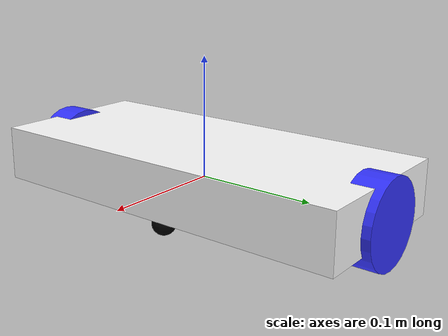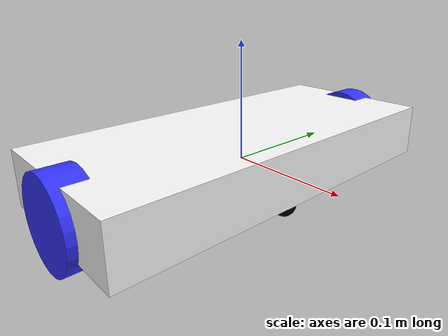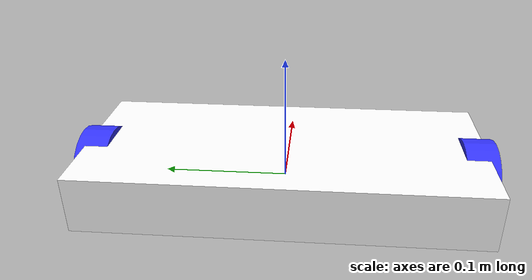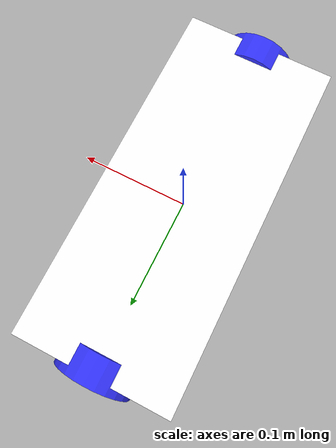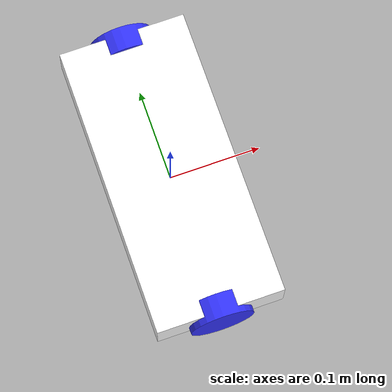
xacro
<?xml version="1.0"?>
<robot xmlns:xacro="http://www.ros.org/wiki/xacro" >

    <xacro:include filename="inertial_macros.xacro"/>

    <material name="white">
        <color rgba="1 1 1 1" />
    </material>

    <material name="orange">
        <color rgba="1 0.3 0.1 1" />
    </material>

    <material name="blue">
        <color rgba="0.2 0.2 1 1" />
    </material>

    <material name="red">
        <color rgba="1 0 0 1" />
    </material>

    <material name="black">
        <color rgba="0 0 0 1" />
    </material>

    <!-- BASE LINK  -->

    <link name="base_link">

    </link>

    <!-- BASE_FOOTPRINT LINK -->
    <joint name="base_footprint_joint" type="fixed">
        <parent link="base_link"/>
        <child link="base_footprint"/>
        <origin xyz="0 0 0" rpy="0 0 0"/>
    </joint>

    <link name="base_footprint">
    </link>

    <!--  CHASSIS LINK  -->
    <joint name="chassis_joint" type="fixed">
        <parent link="base_link"/>
        <child link="chassis"/>
        <origin xyz="0 0 0"/>
    </joint>

    <link name="chassis">
        <visual>
            <origin xyz="0 0 0.007"/>
            <geometry>
                <box size="0.140 0.320 0.0455"/>
            </geometry>
            <material name="white"/>
        </visual>
        <collision>
            <origin xyz="0 0 0.007"/>
            <geometry>
                <box size="0.140 0.320 0.0455"/>
            </geometry>
        </collision>
        <xacro:inertial_box mass="0.5" x="0.140" y="0.320" z="0.0455">
            <origin xyz="0 0 0" rpy="0 0 0"/>
        </xacro:inertial_box>
    </link>

    <gazebo reference="chassis">
        <material>Gazebo/White</material>
    </gazebo>

    <!--  LEFT WHEEL LINK  -->
    <joint name="left_wheel_joint" type="continuous">
        <parent link="base_link"/>
        <child link="left_wheel"/>
        <origin xyz="0 0.15425 0" rpy="-${pi/2} 0 0"/>
        <axis xyz="0 0 1"/>
    </joint>

    <link name="left_wheel">
        <visual>
            <geometry>
                <cylinder radius="0.035" length="0.0254"/>
            </geometry>
            <material name="blue"/>
        </visual>
        <collision>
            <geometry>
                <sphere radius="0.035"/>
            </geometry>
        </collision>
        <xacro:inertial_sphere mass="0.1" radius="0.035" >
            <origin xyz="0 0 0" rpy="0 0 0"/>
        </xacro:inertial_sphere>
    </link>

    <gazebo reference="left_wheel">
        <material>Gazebo/Blue</material>
    </gazebo>

    <!--  RIGHT WHEEL LINK  -->
    <joint name="right_wheel_joint" type="continuous">
        <parent link="base_link"/>
        <child link="right_wheel"/>
        <origin xyz="0 -0.15425 0" rpy="${pi/2} 0 0"/>
        <axis xyz="0 0 -1"/>
    </joint>

    <link name="right_wheel">
        <visual>
            <geometry>
                <cylinder radius="0.035" length="0.0254"/>
            </geometry>
            <material name="blue"/>
        </visual>
        <collision>
            <geometry>
                <sphere radius="0.035"/>
            </geometry>
        </collision>
        <xacro:inertial_sphere mass="0.1" radius="0.035" >
            <origin xyz="0 0 0" rpy="0 0 0"/>
        </xacro:inertial_sphere>
    </link>

    <gazebo reference="right_wheel">
        <material>Gazebo/Blue</material>
    </gazebo>

    <!--  CASTER WHEEL LINK-->
    <joint name="caster_wheel_joint" type="fixed">
        <parent link="base_link"/>
        <child link="caster_wheel"/>
        <origin xyz="0.05 0 -0.025"/>
    </joint>

    <link name="caster_wheel">
        <visual>
            <geometry>
                <sphere radius="0.01"/>
            </geometry>
            <material name="black"/>
        </visual>
        <collision>
            <geometry>
                <sphere radius="0.01"/>
            </geometry>
        </collision>
        <xacro:inertial_sphere mass="0.01" radius="0.01">
            <origin xyz="0 0 0" rpy="0 0 0"/>
        </xacro:inertial_sphere>
    </link>

    <gazebo reference="caster_wheel">
        <material>Gazebo/Black</material>
        <mu1 value="0.0"/>
        <mu2 value="0.0"/>

    </gazebo>

</robot>
